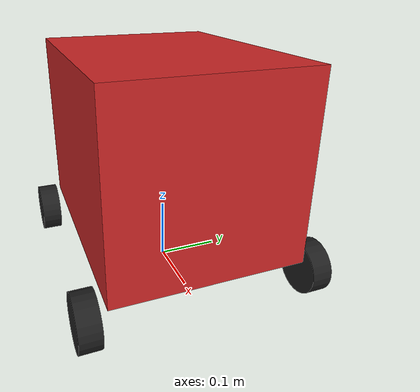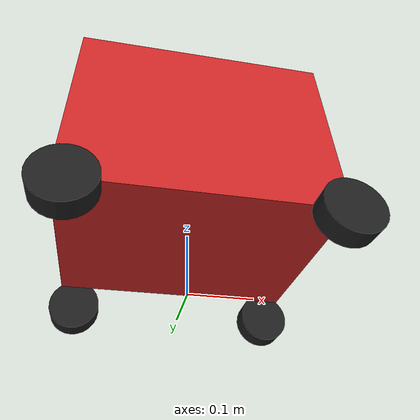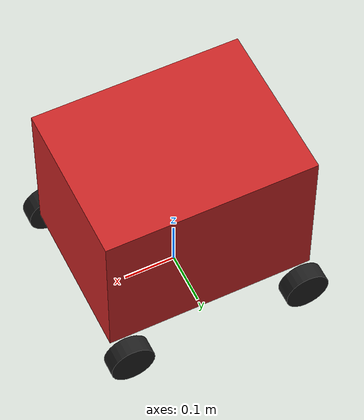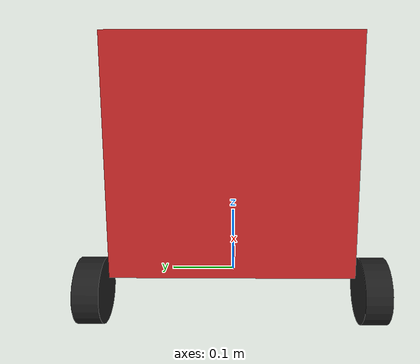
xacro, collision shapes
<?xml version="1.0"?>
<robot name="robot" xmlns:xacro="http://www.ros.org/wiki/xacro">
<!-- title	:patrol_robot.xacro -->
<!-- Author	:Chen Bo An 		-->
<!-- Date 	:2026-03-15			-->

<!-- 定義XACRO清單 -->
	<!-- 參數 -->
	<xacro:property name="PI" value="3.14159"/>
	<!-- 車體參數 -->
	<xacro:property name="base_length" value="0.4"/>
	<xacro:property name="base_width" value="0.306"/>
	<xacro:property name="base_height" value="0.3"/>
	<xacro:property name="base_mass" value="3.0"/>
	<!-- 輪子參數 -->
	<xacro:property name="wheel_radius" value="0.0425"/>
	<xacro:property name="wheel_width" value="0.0334"/>
	<xacro:property name="wheel_mass" value="0.2"/>
	<!-- 雷達參數 -->
	<xacro:property name="laser_radius" value="0.035"/>
	<xacro:property name="laser_width" value="0.03"/>
	<xacro:property name="laser_mass" value="0.2"/>

	<!-- 輪子巨集 -->
	<xacro:macro name="wheel_func" params="wheel_name x_offset y_offset">
		<link name="${wheel_name}">
			<!-- 沒有輪子外觀 -->
			<!-- 碰撞屬性 -->
			<collision>
				<origin xyz="0 0 0" rpy="${PI/2} 0 0"/>
				<geometry>
					<cylinder radius="${wheel_radius}" length="${wheel_width}"/>
				</geometry>
			</collision>

			<!-- 慣性屬性 -->
			<inertial>
				<!-- 質量 -->
				<mass value="${wheel_mass}"/>
				<!-- 慣性矩 -->
				<inertia
					ixx="${1/12 * wheel_mass * (3 * wheel_radius**2 + wheel_width**2)}" ixy="0" ixz="0"
					iyy="${1/12 * wheel_mass * (3 * wheel_radius**2 + wheel_width**2)}" iyz="0"
					izz="${1/2 * wheel_mass * wheel_radius**2}"/>
			</inertial>
		</link>

		<!-- 將輪子與車體連結 -->
		<joint name="${wheel_name}_joint" type="continuous">
			<parent link="base_link"/>
			<child link="${wheel_name}"/>
			<origin xyz="${x_offset} ${y_offset} ${wheel_radius}" rpy="0 0 0"/>
			<axis xyz="0 1 0"/>
		</joint>
	</xacro:macro>

<!-- 建立模型 -->
	<!-- TF基準點 -->
	<link name="base_link">
		<!-- 碰撞屬性 -->
		<inertial>
			<mass value="0.0001"/>
			<inertia ixx="0.0001" ixy="0" ixz="0" iyy="0.0001" iyz="0" izz="0.0001"/>
		</inertial>
	</link>

	<link name="base_footprint"/>

	<!-- 車子底盤 -->
	<link name="chassis">
		<!-- 外觀屬性 -->
		<visual>
			<!-- 匯入車子模型 -->
			<geometry>
				<mesh filename="package://patrol_control/meshes/andy2025S.STL" scale="0.001 0.001 0.001"/>
			</geometry>
			<!-- 設定原點及旋轉 -->
			<origin xyz="0.215 -0.195 -0.22" rpy="${PI/2} 0 ${PI}"/>
		</visual>

		<!-- 碰撞屬性 -->
		<collision>
			<origin xyz="0 0 0" rpy="0 0 ${PI}"/>
			<!-- 碰撞箱大小 -->
			<geometry>
				<box size="${base_length} ${base_width} ${base_height}"/>
			</geometry>
		</collision>

		<!-- 慣性屬性 -->
		<inertial>
			<origin xyz="0 0 0" rpy="0 0 0"/>
			<!-- 質量 -->
			<mass value="${base_mass}"/>
			<!-- 慣性矩 -->
			<inertia
				ixx="${1/12 * base_mass * (base_height**2 + base_width**2)}" ixy="0" ixz="0"
				iyy="${1/12 * base_mass * (base_length**2 + base_height**2)}" iyz="0"
				izz="${1/12 * base_mass * (base_length**2 + base_width**2)}"/>
		</inertial>
	</link>

	<joint name="base_footprint_joint" type="fixed">
		<parent link="base_footprint"/>
		<child link="base_link"/>
		<origin xyz="0 0 0" rpy="0 0 0"/>
	</joint>

	<!-- 將車子外觀建立在基準點上 -->
	<joint name="base_joint" type="fixed">
		<parent link="base_link"/>
		<child link="chassis"/>
		<origin xyz="0 0 0.22" rpy="0 0 0"/>
	</joint>

	<!-- 建立四顆輪子 -->
	<xacro:wheel_func wheel_name="left_front_wheel"  x_offset="0.175"  y_offset="0.18"/>
	<xacro:wheel_func wheel_name="right_front_wheel" x_offset="0.175"  y_offset="-0.18"/>
	<xacro:wheel_func wheel_name="left_back_wheel"   x_offset="-0.175" y_offset="0.18"/>
	<xacro:wheel_func wheel_name="right_back_wheel"  x_offset="-0.175" y_offset="-0.18"/>

	<!-- 雷達 -->
	<link name="laser_frame">
		<!-- 慣性屬性 -->
		<inertial>
			<!-- 質量 -->
			<mass value="${laser_mass}"/>
			<!-- 慣性矩 -->
			<inertia
				ixx="${1/12 * laser_mass * (3 * laser_radius**2 + laser_width**2)}" ixy="0" ixz="0"
				iyy="${1/12 * laser_mass * (3 * laser_radius**2 + laser_width**2)}" iyz="0"
				izz="${1/2 * laser_mass * laser_radius**2}"/>
		</inertial>
	</link>

	<!-- 將雷達與車體連結 -->
	<joint name="laser_frame_joint" type="fixed">
		<parent link="chassis"/>
		<child link="laser_frame"/>
		<origin xyz="0 0 0.1" rpy="0 0 0"/>
	</joint>

	<link name="imu_link">
		<inertial>
			<mass value="0.01"/>
			<inertia ixx="1e-5" ixy="0" ixz="0" iyy="1e-5" iyz="0" izz="1e-5"/>
		</inertial>
	</link>

	<joint name="imu_joint" type="fixed">
		<parent link="chassis"/>
		<child link="imu_link"/>
		<origin xyz="0 0 0.05" rpy="0 0 0"/>
	</joint>

<!-- Gazebo 控制與物理 -->
	<!-- 輪子參數設定 -->
	<xacro:macro name="wheel_gazebo" params="wheel_name">
		<gazebo reference="${wheel_name}">
			<!-- 前進後退摩擦力 -->
			<mu1 value="0.6"/>
			<!-- 橫向摩擦力 -->
			<mu2 value="0.6"/>
			<!-- 接觸硬度 -->
			<kp value="1000000.0"/>
			<!-- 接觸阻尼 -->
			<kd value="1.0"/>
			<material>Gazebo/Black</material>
		</gazebo>
	</xacro:macro>

	<!-- 設定每顆輪子的參數 -->
	<xacro:wheel_gazebo wheel_name="right_front_wheel"/>
	<xacro:wheel_gazebo wheel_name="right_back_wheel"/>
	<xacro:wheel_gazebo wheel_name="left_front_wheel"/>
	<xacro:wheel_gazebo wheel_name="left_back_wheel"/>

	<!-- 設定車體顏色 -->
	<gazebo reference="chassis">
		<material>Gazebo/Red</material>
	</gazebo>

	<!-- 控制器套件 -->
	<gazebo>
		<!-- 加載差速驅動檔案 -->
		<plugin filename="gz-sim-diff-drive-system" name="gz::sim::systems::DiffDrive">
			<!-- 控制指令話題 -->
			<topic>/cmd_vel</topic>

			<!-- 告訴插件關節受力位置 -->
			<left_joint>left_front_wheel_joint</left_joint>
			<left_joint>left_back_wheel_joint</left_joint>
			<right_joint>right_front_wheel_joint</right_joint>
			<right_joint>right_back_wheel_joint</right_joint>

			<!--左右輪子之間的距離及輪子直徑 -->
			<wheel_separation>0.35</wheel_separation>
			<wheel_radius>${wheel_radius}</wheel_radius>

			<!-- 輪子最大馬力 -->
			<max_wheel_torque>20</max_wheel_torque>

			<!-- 加速度限制 -->
			<max_linear_acceleration>1.0</max_linear_acceleration>

			<!-- 里程計話題與坐標系名稱 -->
			<odom_topic>odom</odom_topic>
			<frame_id>odom</frame_id>

			<!-- 機器人底盤坐標系 -->
			<child_frame_id>base_link</child_frame_id>

			<!-- 是否發布TF與里程計資料 -->
			<publish_odom>true</publish_odom>
			<publish_odom_tf>false</publish_odom_tf>
			<publish_wheel_tf>false</publish_wheel_tf>

			<!-- 更新頻率 -->
			<update_rate>30</update_rate>
		</plugin>

		<!-- 將數據發佈到topic -->
		<plugin filename="gz-sim-joint-state-publisher-system" name="gz::sim::systems::JointStatePublisher">
			<topic>joint_states</topic>
			<update_rate>30</update_rate>
		</plugin>
	</gazebo>

	<!-- 光達套件 -->
	<gazebo reference="laser_frame">
        <sensor name="rplidar_a1" type="gpu_lidar">
            <pose>0 0 0 0 0 0</pose>
            <topic>scan</topic>
			<frame_id>laser_frame</frame_id>
			<gz_frame_id>laser_frame</gz_frame_id>

            <update_rate>10</update_rate>
            <ray>
                <scan>
                    <horizontal>
                        <samples>360</samples>
                        <resolution>1</resolution>
                        <min_angle>-3.14159</min_angle>
                        <max_angle>3.14159</max_angle>
                    </horizontal>
                </scan>
                <range>
                    <min>0.15</min>
                    <max>12.0</max>
                </range>
            </ray>
            <always_on>1</always_on>
            <visualize>false</visualize>
        </sensor>
    </gazebo>

	<gazebo>
  		<plugin filename="gz-sim-imu-system" name="gz::sim::systems::Imu">
		</plugin>
	</gazebo>

	<gazebo reference="imu_link">
		<sensor name="mpu6050_imu" type="imu">
			<always_on>true</always_on>
			<update_rate>100</update_rate>
			<visualize>true</visualize>
			<topic>imu/data</topic>
			<gz_frame_id>imu_link</gz_frame_id>

			<imu>
				<angular_velocity>
					<x><noise type="gaussian"><mean>0.0</mean><stddev>2e-4</stddev></noise></x>
					<y><noise type="gaussian"><mean>0.0</mean><stddev>2e-4</stddev></noise></y>
					<z><noise type="gaussian"><mean>0.0</mean><stddev>2e-4</stddev></noise></z>
				</angular_velocity>
				<linear_acceleration>
					<x><noise type="gaussian"><mean>0.0</mean><stddev>1.7e-2</stddev></noise></x>
					<y><noise type="gaussian"><mean>0.0</mean><stddev>1.7e-2</stddev></noise></y>
					<z><noise type="gaussian"><mean>0.0</mean><stddev>1.7e-2</stddev></noise></z>
				</linear_acceleration>
			</imu>
		</sensor>
	</gazebo>
</robot>
